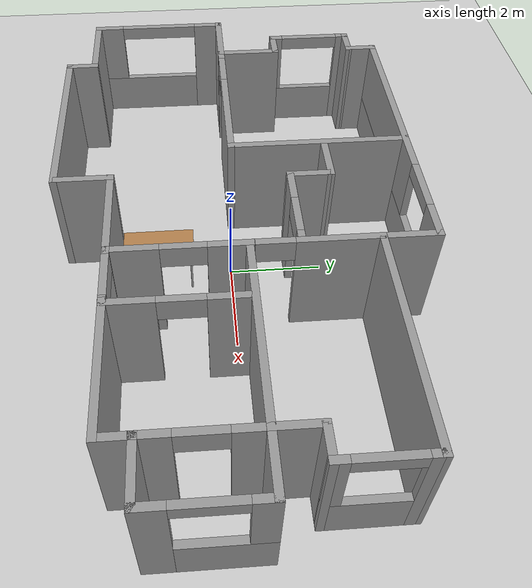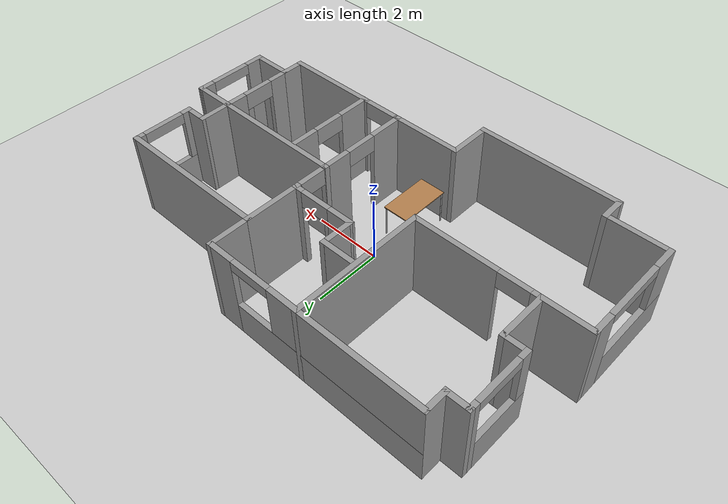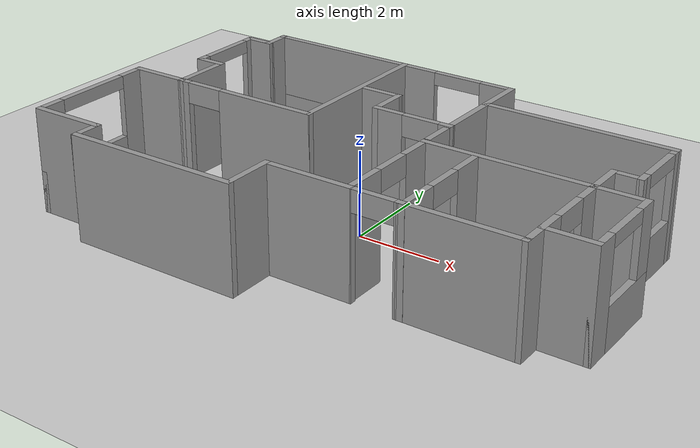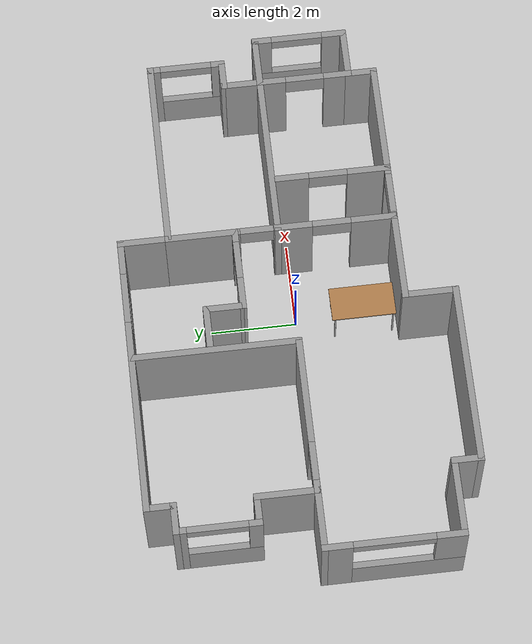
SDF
<sdf version="1.7">
 <world name="default">
  <light name="sun" type="directional">
   <pose>0 0 10 0 -0 0</pose>
   <diffuse>0.8 0.8 0.8 1</diffuse>
   <specular>0.2 0.2 0.2 1</specular>
   <attenuation>
    <range>1000</range>
    <constant>0.9</constant>
    <linear>0.01</linear>
    <quadratic>0.001</quadratic>
   </attenuation>
   <direction>-0.5 0.1 -0.9</direction>
   <spot><inner_angle>0</inner_angle><outer_angle>0</outer_angle><falloff>0</falloff></spot>
  </light>
  <model name="ground_plane">
   <static>1</static>
   <link name="link">
    <collision name="collision">
     <geometry><plane><normal>0 0 1</normal><size>100 100</size></plane></geometry>
     <surface>
      <contact><collide_bitmask>65535</collide_bitmask></contact>
      <friction><ode><mu>100</mu><mu2>50</mu2></ode></friction>
     </surface>
    </collision>
    <visual name="visual">
     <cast_shadows>0</cast_shadows>
     <geometry><plane><normal>0 0 1</normal><size>100 100</size></plane></geometry>
     <material>
      <script><uri>file://media/materials/scripts/gazebo.material</uri><name>Gazebo/Grey</name></script>
     </material>
    </visual>
   </link>
  </model>
  <gravity>0 0 -9.8</gravity>
  <magnetic_field>6e-06 2.3e-05 -4.2e-05</magnetic_field>
  <atmosphere type="adiabatic"/>
  <physics type="ode">
   <max_step_size>0.001</max_step_size>
   <real_time_factor>1</real_time_factor>
   <real_time_update_rate>1000</real_time_update_rate>
  </physics>
  <scene><ambient>0.4 0.4 0.4 1</ambient><background>0.7 0.7 0.7 1</background><shadows>1</shadows></scene>
  <spherical_coordinates>
   <surface_model>EARTH_WGS84</surface_model>
   <latitude_deg>0</latitude_deg>
   <longitude_deg>0</longitude_deg>
   <elevation>0</elevation>
   <heading_deg>0</heading_deg>
  </spherical_coordinates>
  <model name="home_yt_0817">
   <pose>-0.032308 0.150605 0 0 -0 0</pose>
   <link name="Wall_1">
    <collision name="Wall_1_Collision">
     <geometry><box><size>1.25 0.15 2.5</size></box></geometry>
     <pose>0 0 1.25 0 -0 0</pose>
    </collision>
    <visual name="Wall_1_Visual">
     <pose>0 0 1.25 0 -0 0</pose>
     <geometry><box><size>1.25 0.15 2.5</size></box></geometry>
     <material>
      <script><uri>file://media/materials/scripts/gazebo.material</uri><name>Gazebo/Grey</name></script>
      <ambient>1 1 1 1</ambient>
     </material>
     <meta><layer>0</layer></meta>
    </visual>
    <pose>-0.550075 -3.1368 0 0 -0 1.57093</pose>
   </link>
   <link name="Wall_10">
    <collision name="Wall_10_Collision">
     <geometry><box><size>0.75 0.15 2.5</size></box></geometry>
     <pose>0 0 1.25 0 -0 0</pose>
    </collision>
    <visual name="Wall_10_Visual">
     <pose>0 0 1.25 0 -0 0</pose>
     <geometry><box><size>0.75 0.15 2.5</size></box></geometry>
     <material>
      <script><uri>file://media/materials/scripts/gazebo.material</uri><name>Gazebo/Grey</name></script>
      <ambient>1 1 1 1</ambient>
     </material>
     <meta><layer>0</layer></meta>
    </visual>
    <pose>5.55 0.963311 0 0 -0 0</pose>
   </link>
   <link name="Wall_15">
    <collision name="Wall_15_Collision">
     <geometry><box><size>1.25 0.15 2.5</size></box></geometry>
     <pose>0 0 1.25 0 -0 0</pose>
    </collision>
    <visual name="Wall_15_Visual">
     <pose>0 0 1.25 0 -0 0</pose>
     <geometry><box><size>1.25 0.15 2.5</size></box></geometry>
     <material>
      <script><uri>file://media/materials/scripts/gazebo.material</uri><name>Gazebo/Grey</name></script>
      <ambient>1 1 1 1</ambient>
     </material>
     <meta><layer>0</layer></meta>
    </visual>
    <pose>1.44885 3.20009 0 0 -0 1.5708</pose>
   </link>
   <link name="Wall_16">
    <pose>-1.77565 3.75009 0 0 -0 3.14159</pose>
    <visual name="Wall_16_Visual_0">
     <pose>-2.87986 0 1.25 0 -0 0</pose>
     <geometry><box><size>0.839135 0.15 2.5</size></box></geometry>
     <material>
      <script><uri>file://media/materials/scripts/gazebo.material</uri><name>Gazebo/Grey</name></script>
      <ambient>1 1 1 1</ambient>
     </material>
     <meta><layer>0</layer></meta>
    </visual>
    <collision name="Wall_16_Collision_0">
     <geometry><box><size>0.839135 0.15 2.5</size></box></geometry>
     <pose>-2.87986 0 1.25 0 -0 0</pose>
    </collision>
    <visual name="Wall_16_Visual_1">
     <pose>0.419567 0 0.5 0 -0 0</pose>
     <geometry><box><size>5.75971 0.15 1</size></box></geometry>
     <material>
      <script><uri>file://media/materials/scripts/gazebo.material</uri><name>Gazebo/Grey</name></script>
      <ambient>1 1 1 1</ambient>
     </material>
     <meta><layer>0</layer></meta>
    </visual>
    <collision name="Wall_16_Collision_1">
     <geometry><box><size>5.75971 0.15 1</size></box></geometry>
     <pose>0.419567 0 0.5 0 -0 0</pose>
    </collision>
    <visual name="Wall_16_Visual_2">
     <pose>1.01957 0 1.75 0 -0 0</pose>
     <geometry><box><size>4.55971 0.15 1.5</size></box></geometry>
     <material>
      <script><uri>file://media/materials/scripts/gazebo.material</uri><name>Gazebo/Grey</name></script>
      <ambient>1 1 1 1</ambient>
     </material>
     <meta><layer>0</layer></meta>
    </visual>
    <collision name="Wall_16_Collision_2">
     <geometry><box><size>4.55971 0.15 1.5</size></box></geometry>
     <pose>1.01957 0 1.75 0 -0 0</pose>
    </collision>
    <visual name="Wall_16_Visual_3">
     <pose>-1.86029 0 2.35 0 -0 0</pose>
     <geometry><box><size>1.2 0.15 0.3</size></box></geometry>
     <material>
      <script><uri>file://media/materials/scripts/gazebo.material</uri><name>Gazebo/Grey</name></script>
      <ambient>1 1 1 1</ambient>
     </material>
     <meta><layer>0</layer></meta>
    </visual>
    <collision name="Wall_16_Collision_3">
     <geometry><box><size>1.2 0.15 0.3</size></box></geometry>
     <pose>-1.86029 0 2.35 0 -0 0</pose>
    </collision>
   </link>
   <link name="Wall_17">
    <collision name="Wall_17_Collision">
     <geometry><box><size>0.75 0.15 2.5</size></box></geometry>
     <pose>0 0 1.25 0 -0 0</pose>
    </collision>
    <visual name="Wall_17_Visual">
     <pose>0 0 1.25 0 -0 0</pose>
     <geometry><box><size>0.75 0.15 2.5</size></box></geometry>
     <material>
      <script><uri>file://media/materials/scripts/gazebo.material</uri><name>Gazebo/Grey</name></script>
      <ambient>1 1 1 1</ambient>
     </material>
     <meta><layer>0</layer></meta>
    </visual>
    <pose>-5.00007 3.45 0 0 -0 -1.57055</pose>
   </link>
   <link name="Wall_18">
    <collision name="Wall_18_Collision">
     <geometry><box><size>0.75 0.15 2.5</size></box></geometry>
     <pose>0 0 1.25 0 -0 0</pose>
    </collision>
    <visual name="Wall_18_Visual">
     <pose>0 0 1.25 0 -0 0</pose>
     <geometry><box><size>0.75 0.15 2.5</size></box></geometry>
     <material>
      <script><uri>file://media/materials/scripts/gazebo.material</uri><name>Gazebo/Grey</name></script>
      <ambient>1 1 1 1</ambient>
     </material>
     <meta><layer>0</layer></meta>
    </visual>
    <pose>-5.3 3.14991 0 0 -0 3.14159</pose>
   </link>
   <link name="Wall_19">
    <pose>-5.6 2.22491 0 0 -0 -1.5708</pose>
    <visual name="Wall_19_Visual_0">
     <pose>-0.848243 0 1.25 0 -0 0</pose>
     <geometry><box><size>0.303514 0.15 2.5</size></box></geometry>
     <material>
      <script><uri>file://media/materials/scripts/gazebo.material</uri><name>Gazebo/Grey</name></script>
      <ambient>1 1 1 1</ambient>
     </material>
     <meta><layer>0</layer></meta>
    </visual>
    <collision name="Wall_19_Collision_0">
     <geometry><box><size>0.303514 0.15 2.5</size></box></geometry>
     <pose>-0.848243 0 1.25 0 -0 0</pose>
    </collision>
    <visual name="Wall_19_Visual_1">
     <pose>0.151757 0 0.5 0 -0 0</pose>
     <geometry><box><size>1.69649 0.15 1</size></box></geometry>
     <material>
      <script><uri>file://media/materials/scripts/gazebo.material</uri><name>Gazebo/Grey</name></script>
      <ambient>1 1 1 1</ambient>
     </material>
     <meta><layer>0</layer></meta>
    </visual>
    <collision name="Wall_19_Collision_1">
     <geometry><box><size>1.69649 0.15 1</size></box></geometry>
     <pose>0.151757 0 0.5 0 -0 0</pose>
    </collision>
    <visual name="Wall_19_Visual_2">
     <pose>0.842836 0 1.75 0 -0 0</pose>
     <geometry><box><size>0.314328 0.15 1.5</size></box></geometry>
     <material>
      <script><uri>file://media/materials/scripts/gazebo.material</uri><name>Gazebo/Grey</name></script>
      <ambient>1 1 1 1</ambient>
     </material>
     <meta><layer>0</layer></meta>
    </visual>
    <collision name="Wall_19_Collision_2">
     <geometry><box><size>0.314328 0.15 1.5</size></box></geometry>
     <pose>0.842836 0 1.75 0 -0 0</pose>
    </collision>
    <visual name="Wall_19_Visual_3">
     <pose>-0.005407 0 2.35 0 -0 0</pose>
     <geometry><box><size>1.38216 0.15 0.3</size></box></geometry>
     <material>
      <script><uri>file://media/materials/scripts/gazebo.material</uri><name>Gazebo/Grey</name></script>
      <ambient>1 1 1 1</ambient>
     </material>
     <meta><layer>0</layer></meta>
    </visual>
    <collision name="Wall_19_Collision_3">
     <geometry><box><size>1.38216 0.15 0.3</size></box></geometry>
     <pose>-0.005407 0 2.35 0 -0 0</pose>
    </collision>
   </link>
   <link name="Wall_2">
    <collision name="Wall_2_Collision">
     <geometry><box><size>2.14885 0.15 2.5</size></box></geometry>
     <pose>0 0 1.25 0 -0 0</pose>
    </collision>
    <visual name="Wall_2_Visual">
     <pose>0 0 1.25 0 -0 0</pose>
     <geometry><box><size>2.14885 0.15 2.5</size></box></geometry>
     <material>
      <script><uri>file://media/materials/scripts/gazebo.material</uri><name>Gazebo/Grey</name></script>
      <ambient>1 1 1 1</ambient>
     </material>
     <meta><layer>0</layer></meta>
    </visual>
    <pose>0.44935 -2.58691 0 0 -0 0</pose>
   </link>
   <link name="Wall_20">
    <collision name="Wall_20_Collision">
     <geometry><box><size>0.75 0.15 2.5</size></box></geometry>
     <pose>0 0 1.25 0 -0 0</pose>
    </collision>
    <visual name="Wall_20_Visual">
     <pose>0 0 1.25 0 -0 0</pose>
     <geometry><box><size>0.75 0.15 2.5</size></box></geometry>
     <material>
      <script><uri>file://media/materials/scripts/gazebo.material</uri><name>Gazebo/Grey</name></script>
      <ambient>1 1 1 1</ambient>
     </material>
     <meta><layer>0</layer></meta>
    </visual>
    <pose>-5.3 1.29991 0 0 -0 0</pose>
   </link>
   <link name="Wall_21">
    <collision name="Wall_21_Collision">
     <geometry><box><size>1.5 0.15 2.5</size></box></geometry>
     <pose>0 0 1.25 0 -0 0</pose>
    </collision>
    <visual name="Wall_21_Visual">
     <pose>0 0 1.25 0 -0 0</pose>
     <geometry><box><size>1.5 0.15 2.5</size></box></geometry>
     <material>
      <script><uri>file://media/materials/scripts/gazebo.material</uri><name>Gazebo/Grey</name></script>
      <ambient>1 1 1 1</ambient>
     </material>
     <meta><layer>0</layer></meta>
    </visual>
    <pose>-5 0.624914 0 0 -0 -1.5708</pose>
   </link>
   <link name="Wall_22">
    <collision name="Wall_22_Collision">
     <geometry><box><size>1.5 0.15 2.5</size></box></geometry>
     <pose>0 0 1.25 0 -0 0</pose>
    </collision>
    <visual name="Wall_22_Visual">
     <pose>0 0 1.25 0 -0 0</pose>
     <geometry><box><size>1.5 0.15 2.5</size></box></geometry>
     <material>
      <script><uri>file://media/materials/scripts/gazebo.material</uri><name>Gazebo/Grey</name></script>
      <ambient>1 1 1 1</ambient>
     </material>
     <meta><layer>0</layer></meta>
    </visual>
    <pose>-5.675 -0.050086 0 0 -0 3.14159</pose>
   </link>
   <link name="Wall_23">
    <pose>-6.35 -1.60009 0 0 -0 -1.5708</pose>
    <visual name="Wall_23_Visual_0">
     <pose>-1.27339 0 1.25 0 -0 0</pose>
     <geometry><box><size>0.703229 0.15 2.5</size></box></geometry>
     <material>
      <script><uri>file://media/materials/scripts/gazebo.material</uri><name>Gazebo/Grey</name></script>
      <ambient>1 1 1 1</ambient>
     </material>
     <meta><layer>0</layer></meta>
    </visual>
    <collision name="Wall_23_Collision_0">
     <geometry><box><size>0.703229 0.15 2.5</size></box></geometry>
     <pose>-1.27339 0 1.25 0 -0 0</pose>
    </collision>
    <visual name="Wall_23_Visual_1">
     <pose>0.351614 0 0.5 0 -0 0</pose>
     <geometry><box><size>2.54677 0.15 1</size></box></geometry>
     <material>
      <script><uri>file://media/materials/scripts/gazebo.material</uri><name>Gazebo/Grey</name></script>
      <ambient>1 1 1 1</ambient>
     </material>
     <meta><layer>0</layer></meta>
    </visual>
    <collision name="Wall_23_Collision_1">
     <geometry><box><size>2.54677 0.15 1</size></box></geometry>
     <pose>0.351614 0 0.5 0 -0 0</pose>
    </collision>
    <visual name="Wall_23_Visual_2">
     <pose>1.27461 0 1.75 0 -0 0</pose>
     <geometry><box><size>0.700771 0.15 1.5</size></box></geometry>
     <material>
      <script><uri>file://media/materials/scripts/gazebo.material</uri><name>Gazebo/Grey</name></script>
      <ambient>1 1 1 1</ambient>
     </material>
     <meta><layer>0</layer></meta>
    </visual>
    <collision name="Wall_23_Collision_2">
     <geometry><box><size>0.700771 0.15 1.5</size></box></geometry>
     <pose>1.27461 0 1.75 0 -0 0</pose>
    </collision>
    <visual name="Wall_23_Visual_3">
     <pose>0.001229 0 2.35 0 -0 0</pose>
     <geometry><box><size>1.846 0.15 0.3</size></box></geometry>
     <material>
      <script><uri>file://media/materials/scripts/gazebo.material</uri><name>Gazebo/Grey</name></script>
      <ambient>1 1 1 1</ambient>
     </material>
     <meta><layer>0</layer></meta>
    </visual>
    <collision name="Wall_23_Collision_3">
     <geometry><box><size>1.846 0.15 0.3</size></box></geometry>
     <pose>0.001229 0 2.35 0 -0 0</pose>
    </collision>
   </link>
   <link name="Wall_29">
    <collision name="Wall_29_Collision">
     <geometry><box><size>0.75 0.15 2.5</size></box></geometry>
     <pose>0 0 1.25 0 -0 0</pose>
    </collision>
    <visual name="Wall_29_Visual">
     <pose>0 0 1.25 0 -0 0</pose>
     <geometry><box><size>0.75 0.15 2.5</size></box></geometry>
     <material>
      <script><uri>file://media/materials/scripts/gazebo.material</uri><name>Gazebo/Grey</name></script>
      <ambient>1 1 1 1</ambient>
     </material>
     <meta><layer>0</layer></meta>
    </visual>
    <pose>-4.65 -3.45009 0 0 -0 -1.5708</pose>
   </link>
   <link name="Wall_3">
    <pose>2.04935 -2.58691 0 0 -0 0</pose>
    <visual name="Wall_3_Visual_0">
     <pose>-0.586161 0 1.25 0 -0 0</pose>
     <geometry><box><size>0.178829 0.15 2.5</size></box></geometry>
     <material>
      <script><uri>file://media/materials/scripts/gazebo.material</uri><name>Gazebo/Grey</name></script>
      <ambient>1 1 1 1</ambient>
     </material>
     <meta><layer>0</layer></meta>
    </visual>
    <collision name="Wall_3_Collision_0">
     <geometry><box><size>0.178829 0.15 2.5</size></box></geometry>
     <pose>-0.586161 0 1.25 0 -0 0</pose>
    </collision>
    <visual name="Wall_3_Visual_1">
     <pose>0.576703 0 1.25 0 -0 0</pose>
     <geometry><box><size>0.197745 0.15 2.5</size></box></geometry>
     <material>
      <script><uri>file://media/materials/scripts/gazebo.material</uri><name>Gazebo/Grey</name></script>
      <ambient>1 1 1 1</ambient>
     </material>
     <meta><layer>0</layer></meta>
    </visual>
    <collision name="Wall_3_Collision_1">
     <geometry><box><size>0.197745 0.15 2.5</size></box></geometry>
     <pose>0.576703 0 1.25 0 -0 0</pose>
    </collision>
    <visual name="Wall_3_Visual_2">
     <pose>-0.009458 0 2.25 0 -0 0</pose>
     <geometry><box><size>0.974577 0.15 0.5</size></box></geometry>
     <material>
      <script><uri>file://media/materials/scripts/gazebo.material</uri><name>Gazebo/Grey</name></script>
      <ambient>1 1 1 1</ambient>
     </material>
     <meta><layer>0</layer></meta>
    </visual>
    <collision name="Wall_3_Collision_2">
     <geometry><box><size>0.974577 0.15 0.5</size></box></geometry>
     <pose>-0.009458 0 2.25 0 -0 0</pose>
    </collision>
   </link>
   <link name="Wall_30">
    <collision name="Wall_30_Collision">
     <geometry><box><size>4.25049 0.15 2.5</size></box></geometry>
     <pose>0 0 1.25 0 -0 0</pose>
    </collision>
    <visual name="Wall_30_Visual">
     <pose>0 0 1.25 0 -0 0</pose>
     <geometry><box><size>4.25049 0.15 2.5</size></box></geometry>
     <material>
      <script><uri>file://media/materials/scripts/gazebo.material</uri><name>Gazebo/Grey</name></script>
      <ambient>1 1 1 1</ambient>
     </material>
     <meta><layer>0</layer></meta>
    </visual>
    <pose>-2.6 -3.75009 0 0 -0 0</pose>
   </link>
   <link name="Wall_32">
    <pose>-3.20008 -0.05 0 0 -0 4.8e-05</pose>
    <visual name="Wall_32_Visual_0">
     <pose>-1.71618 0 1.25 0 -0 0</pose>
     <geometry><box><size>0.317631 0.15 2.5</size></box></geometry>
     <material>
      <script><uri>file://media/materials/scripts/gazebo.material</uri><name>Gazebo/Grey</name></script>
      <ambient>1 1 1 1</ambient>
     </material>
     <meta><layer>0</layer></meta>
    </visual>
    <collision name="Wall_32_Collision_0">
     <geometry><box><size>0.317631 0.15 2.5</size></box></geometry>
     <pose>-1.71618 0 1.25 0 -0 0</pose>
    </collision>
    <visual name="Wall_32_Visual_1">
     <pose>0.608816 0 1.25 0 -0 0</pose>
     <geometry><box><size>2.53237 0.15 2.5</size></box></geometry>
     <material>
      <script><uri>file://media/materials/scripts/gazebo.material</uri><name>Gazebo/Grey</name></script>
      <ambient>1 1 1 1</ambient>
     </material>
     <meta><layer>0</layer></meta>
    </visual>
    <collision name="Wall_32_Collision_1">
     <geometry><box><size>2.53237 0.15 2.5</size></box></geometry>
     <pose>0.608816 0 1.25 0 -0 0</pose>
    </collision>
    <visual name="Wall_32_Visual_2">
     <pose>-1.10737 0 2.25 0 -0 0</pose>
     <geometry><box><size>0.9 0.15 0.5</size></box></geometry>
     <material>
      <script><uri>file://media/materials/scripts/gazebo.material</uri><name>Gazebo/Grey</name></script>
      <ambient>1 1 1 1</ambient>
     </material>
     <meta><layer>0</layer></meta>
    </visual>
    <collision name="Wall_32_Collision_2">
     <geometry><box><size>0.9 0.15 0.5</size></box></geometry>
     <pose>-1.10737 0 2.25 0 -0 0</pose>
    </collision>
   </link>
   <link name="Wall_38">
    <collision name="Wall_38_Collision">
     <geometry><box><size>3.95 0.15 2.5</size></box></geometry>
     <pose>0 0 1.25 0 -0 0</pose>
    </collision>
    <visual name="Wall_38_Visual">
     <pose>0 0 1.25 0 -0 0</pose>
     <geometry><box><size>3.95 0.15 2.5</size></box></geometry>
     <material>
      <script><uri>file://media/materials/scripts/gazebo.material</uri><name>Gazebo/Grey</name></script>
      <ambient>1 1 1 1</ambient>
     </material>
     <meta><layer>0</layer></meta>
    </visual>
    <pose>-1.40015 1.85009 0 0 -0 1.5708</pose>
   </link>
   <link name="Wall_4">
    <collision name="Wall_4_Collision">
     <geometry><box><size>2.75 0.15 2.5</size></box></geometry>
     <pose>0 0 1.25 0 -0 0</pose>
    </collision>
    <visual name="Wall_4_Visual">
     <pose>0 0 1.25 0 -0 0</pose>
     <geometry><box><size>2.75 0.15 2.5</size></box></geometry>
     <material>
      <script><uri>file://media/materials/scripts/gazebo.material</uri><name>Gazebo/Grey</name></script>
      <ambient>1 1 1 1</ambient>
     </material>
     <meta><layer>0</layer></meta>
    </visual>
    <pose>3.94992 -2.5868 0 0 -0 8.7e-05</pose>
   </link>
   <link name="Wall_40">
    <collision name="Wall_40_Collision">
     <geometry><box><size>1 0.15 2.5</size></box></geometry>
     <pose>0 0 1.25 0 -0 0</pose>
    </collision>
    <visual name="Wall_40_Visual">
     <pose>0 0 1.25 0 -0 0</pose>
     <geometry><box><size>1 0.15 2.5</size></box></geometry>
     <material>
      <script><uri>file://media/materials/scripts/gazebo.material</uri><name>Gazebo/Grey</name></script>
      <ambient>1 1 1 1</ambient>
     </material>
     <meta><layer>0</layer></meta>
    </visual>
    <pose>-0.825948 1.95762 0 0 -0 0</pose>
   </link>
   <link name="Wall_41">
    <collision name="Wall_41_Collision">
     <geometry><box><size>1 0.15 2.5</size></box></geometry>
     <pose>0 0 1.25 0 -0 0</pose>
    </collision>
    <visual name="Wall_41_Visual">
     <pose>0 0 1.25 0 -0 0</pose>
     <geometry><box><size>1 0.15 2.5</size></box></geometry>
     <material>
      <script><uri>file://media/materials/scripts/gazebo.material</uri><name>Gazebo/Grey</name></script>
      <ambient>1 1 1 1</ambient>
     </material>
     <meta><layer>0</layer></meta>
    </visual>
    <pose>-0.401049 1.53285 0 0 -0 -1.57103</pose>
   </link>
   <link name="Wall_49">
    <pose>0.52385 1.10809 0 0 -0 0</pose>
    <visual name="Wall_49_Visual_0">
     <pose>-0.613419 0 1.25 0 -0 0</pose>
     <geometry><box><size>0.773161 0.15 2.5</size></box></geometry>
     <material>
      <script><uri>file://media/materials/scripts/gazebo.material</uri><name>Gazebo/Grey</name></script>
      <ambient>1 1 1 1</ambient>
     </material>
     <meta><layer>0</layer></meta>
    </visual>
    <collision name="Wall_49_Collision_0">
     <geometry><box><size>0.773161 0.15 2.5</size></box></geometry>
     <pose>-0.613419 0 1.25 0 -0 0</pose>
    </collision>
    <visual name="Wall_49_Visual_1">
     <pose>0.836581 0 1.25 0 -0 0</pose>
     <geometry><box><size>0.326839 0.15 2.5</size></box></geometry>
     <material>
      <script><uri>file://media/materials/scripts/gazebo.material</uri><name>Gazebo/Grey</name></script>
      <ambient>1 1 1 1</ambient>
     </material>
     <meta><layer>0</layer></meta>
    </visual>
    <collision name="Wall_49_Collision_1">
     <geometry><box><size>0.326839 0.15 2.5</size></box></geometry>
     <pose>0.836581 0 1.25 0 -0 0</pose>
    </collision>
    <visual name="Wall_49_Visual_2">
     <pose>0.223161 0 2.25 0 -0 0</pose>
     <geometry><box><size>0.9 0.15 0.5</size></box></geometry>
     <material>
      <script><uri>file://media/materials/scripts/gazebo.material</uri><name>Gazebo/Grey</name></script>
      <ambient>1 1 1 1</ambient>
     </material>
     <meta><layer>0</layer></meta>
    </visual>
    <collision name="Wall_49_Collision_2">
     <geometry><box><size>0.9 0.15 0.5</size></box></geometry>
     <pose>0.223161 0 2.25 0 -0 0</pose>
    </collision>
   </link>
   <link name="Wall_5">
    <collision name="Wall_5_Collision">
     <geometry><box><size>0.75 0.15 2.5</size></box></geometry>
     <pose>0 0 1.25 0 -0 0</pose>
    </collision>
    <visual name="Wall_5_Visual">
     <pose>0 0 1.25 0 -0 0</pose>
     <geometry><box><size>0.75 0.15 2.5</size></box></geometry>
     <material>
      <script><uri>file://media/materials/scripts/gazebo.material</uri><name>Gazebo/Grey</name></script>
      <ambient>1 1 1 1</ambient>
     </material>
     <meta><layer>0</layer></meta>
    </visual>
    <pose>5.25 -2.28669 0 0 -0 1.5708</pose>
   </link>
   <link name="Wall_6">
    <collision name="Wall_6_Collision">
     <geometry><box><size>1.25 0.15 2.5</size></box></geometry>
     <pose>0 0 1.25 0 -0 0</pose>
    </collision>
    <visual name="Wall_6_Visual">
     <pose>0 0 1.25 0 -0 0</pose>
     <geometry><box><size>1.25 0.15 2.5</size></box></geometry>
     <material>
      <script><uri>file://media/materials/scripts/gazebo.material</uri><name>Gazebo/Grey</name></script>
      <ambient>1 1 1 1</ambient>
     </material>
     <meta><layer>0</layer></meta>
    </visual>
    <pose>5.8 -1.98669 0 0 -0 0</pose>
   </link>
   <link name="Wall_62">
    <pose>1.44885 -1.22042 0 0 -0 -1.5708</pose>
    <visual name="Wall_62_Visual_0">
     <pose>-0.979583 0 1.25 0 -0 0</pose>
     <geometry><box><size>0.892833 0.15 2.5</size></box></geometry>
     <material>
      <script><uri>file://media/materials/scripts/gazebo.material</uri><name>Gazebo/Grey</name></script>
      <ambient>1 1 1 1</ambient>
     </material>
     <meta><layer>0</layer></meta>
    </visual>
    <collision name="Wall_62_Collision_0">
     <geometry><box><size>0.892833 0.15 2.5</size></box></geometry>
     <pose>-0.979583 0 1.25 0 -0 0</pose>
    </collision>
    <visual name="Wall_62_Visual_1">
     <pose>0.896417 0 1.25 0 -0 0</pose>
     <geometry><box><size>1.05917 0.15 2.5</size></box></geometry>
     <material>
      <script><uri>file://media/materials/scripts/gazebo.material</uri><name>Gazebo/Grey</name></script>
      <ambient>1 1 1 1</ambient>
     </material>
     <meta><layer>0</layer></meta>
    </visual>
    <collision name="Wall_62_Collision_1">
     <geometry><box><size>1.05917 0.15 2.5</size></box></geometry>
     <pose>0.896417 0 1.25 0 -0 0</pose>
    </collision>
    <visual name="Wall_62_Visual_2">
     <pose>-0.083167 0 2.25 0 -0 0</pose>
     <geometry><box><size>0.9 0.15 0.5</size></box></geometry>
     <material>
      <script><uri>file://media/materials/scripts/gazebo.material</uri><name>Gazebo/Grey</name></script>
      <ambient>1 1 1 1</ambient>
     </material>
     <meta><layer>0</layer></meta>
    </visual>
    <collision name="Wall_62_Collision_2">
     <geometry><box><size>0.9 0.15 0.5</size></box></geometry>
     <pose>-0.083167 0 2.25 0 -0 0</pose>
    </collision>
   </link>
   <link name="Wall_65">
    <collision name="Wall_65_Collision">
     <geometry><box><size>3.951 0.15 2.5</size></box></geometry>
     <pose>0 0 1.25 0 -0 0</pose>
    </collision>
    <visual name="Wall_65_Visual">
     <pose>0 0 1.25 0 -0 0</pose>
     <geometry><box><size>3.951 0.15 2.5</size></box></geometry>
     <material>
      <script><uri>file://media/materials/scripts/gazebo.material</uri><name>Gazebo/Grey</name></script>
      <ambient>1 1 1 1</ambient>
     </material>
     <meta><layer>0</layer></meta>
    </visual>
    <pose>3.34935 0.113086 0 0 -0 3.14159</pose>
   </link>
   <link name="Wall_67">
    <pose>2.68985 -1.30741 0 0 -0 -1.5708</pose>
    <visual name="Wall_67_Visual_0">
     <pose>-0.958274 0 1.25 0 -0 0</pose>
     <geometry><box><size>0.796452 0.15 2.5</size></box></geometry>
     <material>
      <script><uri>file://media/materials/scripts/gazebo.material</uri><name>Gazebo/Grey</name></script>
      <ambient>1 1 1 1</ambient>
     </material>
     <meta><layer>0</layer></meta>
    </visual>
    <collision name="Wall_67_Collision_0">
     <geometry><box><size>0.796452 0.15 2.5</size></box></geometry>
     <pose>-0.958274 0 1.25 0 -0 0</pose>
    </collision>
    <visual name="Wall_67_Visual_1">
     <pose>0.848226 0 1.25 0 -0 0</pose>
     <geometry><box><size>1.01655 0.15 2.5</size></box></geometry>
     <material>
      <script><uri>file://media/materials/scripts/gazebo.material</uri><name>Gazebo/Grey</name></script>
      <ambient>1 1 1 1</ambient>
     </material>
     <meta><layer>0</layer></meta>
    </visual>
    <collision name="Wall_67_Collision_1">
     <geometry><box><size>1.01655 0.15 2.5</size></box></geometry>
     <pose>0.848226 0 1.25 0 -0 0</pose>
    </collision>
    <visual name="Wall_67_Visual_2">
     <pose>-0.110048 0 2.25 0 -0 0</pose>
     <geometry><box><size>0.9 0.15 0.5</size></box></geometry>
     <material>
      <script><uri>file://media/materials/scripts/gazebo.material</uri><name>Gazebo/Grey</name></script>
      <ambient>1 1 1 1</ambient>
     </material>
     <meta><layer>0</layer></meta>
    </visual>
    <collision name="Wall_67_Collision_2">
     <geometry><box><size>0.9 0.15 0.5</size></box></geometry>
     <pose>-0.110048 0 2.25 0 -0 0</pose>
    </collision>
   </link>
   <link name="Wall_7">
    <pose>6.35 -0.936689 0 0 -0 1.5708</pose>
    <visual name="Wall_7_Visual_0">
     <pose>-0.832769 0 1.25 0 -0 0</pose>
     <geometry><box><size>0.584462 0.15 2.5</size></box></geometry>
     <material>
      <script><uri>file://media/materials/scripts/gazebo.material</uri><name>Gazebo/Grey</name></script>
      <ambient>1 1 1 1</ambient>
     </material>
     <meta><layer>0</layer></meta>
    </visual>
    <collision name="Wall_7_Collision_0">
     <geometry><box><size>0.584462 0.15 2.5</size></box></geometry>
     <pose>-0.832769 0 1.25 0 -0 0</pose>
    </collision>
    <visual name="Wall_7_Visual_1">
     <pose>0.292231 0 0.5 0 -0 0</pose>
     <geometry><box><size>1.66554 0.15 1</size></box></geometry>
     <material>
      <script><uri>file://media/materials/scripts/gazebo.material</uri><name>Gazebo/Grey</name></script>
      <ambient>1 1 1 1</ambient>
     </material>
     <meta><layer>0</layer></meta>
    </visual>
    <collision name="Wall_7_Collision_1">
     <geometry><box><size>1.66554 0.15 1</size></box></geometry>
     <pose>0.292231 0 0.5 0 -0 0</pose>
    </collision>
    <visual name="Wall_7_Visual_2">
     <pose>0.892231 0 1.75 0 -0 0</pose>
     <geometry><box><size>0.465538 0.15 1.5</size></box></geometry>
     <material>
      <script><uri>file://media/materials/scripts/gazebo.material</uri><name>Gazebo/Grey</name></script>
      <ambient>1 1 1 1</ambient>
     </material>
     <meta><layer>0</layer></meta>
    </visual>
    <collision name="Wall_7_Collision_2">
     <geometry><box><size>0.465538 0.15 1.5</size></box></geometry>
     <pose>0.892231 0 1.75 0 -0 0</pose>
    </collision>
    <visual name="Wall_7_Visual_3">
     <pose>0.059462 0 2.35 0 -0 0</pose>
     <geometry><box><size>1.2 0.15 0.3</size></box></geometry>
     <material>
      <script><uri>file://media/materials/scripts/gazebo.material</uri><name>Gazebo/Grey</name></script>
      <ambient>1 1 1 1</ambient>
     </material>
     <meta><layer>0</layer></meta>
    </visual>
    <collision name="Wall_7_Collision_3">
     <geometry><box><size>1.2 0.15 0.3</size></box></geometry>
     <pose>0.059462 0 2.35 0 -0 0</pose>
    </collision>
   </link>
   <link name="Wall_76">
    <pose>5.84992 1.8067 0 0 -0 -1.57071</pose>
    <visual name="Wall_76_Visual_0">
     <pose>-0.764842 0 1.25 0 -0 0</pose>
     <geometry><box><size>0.307091 0.15 2.5</size></box></geometry>
     <material>
      <script><uri>file://media/materials/scripts/gazebo.material</uri><name>Gazebo/Grey</name></script>
      <ambient>1 1 1 1</ambient>
     </material>
     <meta><layer>0</layer></meta>
    </visual>
    <collision name="Wall_76_Collision_0">
     <geometry><box><size>0.307091 0.15 2.5</size></box></geometry>
     <pose>-0.764842 0 1.25 0 -0 0</pose>
    </collision>
    <visual name="Wall_76_Visual_1">
     <pose>0.153545 0 0.5 0 -0 0</pose>
     <geometry><box><size>1.52968 0.15 1</size></box></geometry>
     <material>
      <script><uri>file://media/materials/scripts/gazebo.material</uri><name>Gazebo/Grey</name></script>
      <ambient>1 1 1 1</ambient>
     </material>
     <meta><layer>0</layer></meta>
    </visual>
    <collision name="Wall_76_Collision_1">
     <geometry><box><size>1.52968 0.15 1</size></box></geometry>
     <pose>0.153545 0 0.5 0 -0 0</pose>
    </collision>
    <visual name="Wall_76_Visual_2">
     <pose>0.753545 0 1.75 0 -0 0</pose>
     <geometry><box><size>0.329684 0.15 1.5</size></box></geometry>
     <material>
      <script><uri>file://media/materials/scripts/gazebo.material</uri><name>Gazebo/Grey</name></script>
      <ambient>1 1 1 1</ambient>
     </material>
     <meta><layer>0</layer></meta>
    </visual>
    <collision name="Wall_76_Collision_2">
     <geometry><box><size>0.329684 0.15 1.5</size></box></geometry>
     <pose>0.753545 0 1.75 0 -0 0</pose>
    </collision>
    <visual name="Wall_76_Visual_3">
     <pose>-0.011297 0 2.35 0 -0 0</pose>
     <geometry><box><size>1.2 0.15 0.3</size></box></geometry>
     <material>
      <script><uri>file://media/materials/scripts/gazebo.material</uri><name>Gazebo/Grey</name></script>
      <ambient>1 1 1 1</ambient>
     </material>
     <meta><layer>0</layer></meta>
    </visual>
    <collision name="Wall_76_Collision_3">
     <geometry><box><size>1.2 0.15 0.3</size></box></geometry>
     <pose>-0.011297 0 2.35 0 -0 0</pose>
    </collision>
   </link>
   <link name="Wall_78">
    <pose>1.44885 1.38159 0 0 -0 1.5708</pose>
    <visual name="Wall_78_Visual_0">
     <pose>-1.25616 0 1.25 0 -0 0</pose>
     <geometry><box><size>0.174688 0.15 2.5</size></box></geometry>
     <material>
      <script><uri>file://media/materials/scripts/gazebo.material</uri><name>Gazebo/Grey</name></script>
      <ambient>1 1 1 1</ambient>
     </material>
     <meta><layer>0</layer></meta>
    </visual>
    <collision name="Wall_78_Collision_0">
     <geometry><box><size>0.174688 0.15 2.5</size></box></geometry>
     <pose>-1.25616 0 1.25 0 -0 0</pose>
    </collision>
    <visual name="Wall_78_Visual_1">
     <pose>0.474983 0 1.25 0 -0 0</pose>
     <geometry><box><size>1.73703 0.15 2.5</size></box></geometry>
     <material>
      <script><uri>file://media/materials/scripts/gazebo.material</uri><name>Gazebo/Grey</name></script>
      <ambient>1 1 1 1</ambient>
     </material>
     <meta><layer>0</layer></meta>
    </visual>
    <collision name="Wall_78_Collision_1">
     <geometry><box><size>1.73703 0.15 2.5</size></box></geometry>
     <pose>0.474983 0 1.25 0 -0 0</pose>
    </collision>
    <visual name="Wall_78_Visual_2">
     <pose>-0.781173 0 2.25 0 -0 0</pose>
     <geometry><box><size>0.775278 0.15 0.5</size></box></geometry>
     <material>
      <script><uri>file://media/materials/scripts/gazebo.material</uri><name>Gazebo/Grey</name></script>
      <ambient>1 1 1 1</ambient>
     </material>
     <meta><layer>0</layer></meta>
    </visual>
    <collision name="Wall_78_Collision_2">
     <geometry><box><size>0.775278 0.15 0.5</size></box></geometry>
     <pose>-0.781173 0 2.25 0 -0 0</pose>
    </collision>
   </link>
   <link name="Wall_8">
    <collision name="Wall_8_Collision">
     <geometry><box><size>1.25 0.15 2.5</size></box></geometry>
     <pose>0 0 1.25 0 -0 0</pose>
    </collision>
    <visual name="Wall_8_Visual">
     <pose>0 0 1.25 0 -0 0</pose>
     <geometry><box><size>1.25 0.15 2.5</size></box></geometry>
     <material>
      <script><uri>file://media/materials/scripts/gazebo.material</uri><name>Gazebo/Grey</name></script>
      <ambient>1 1 1 1</ambient>
     </material>
     <meta><layer>0</layer></meta>
    </visual>
    <pose>5.79992 0.113199 0 0 -0 -3.14139</pose>
   </link>
   <link name="Wall_80">
    <pose>5.24993 -0.936801 0 0 -0 1.57087</pose>
    <visual name="Wall_80_Visual_0">
     <pose>-0.792093 0 1.25 0 -0 0</pose>
     <geometry><box><size>0.665589 0.15 2.5</size></box></geometry>
     <material>
      <script><uri>file://media/materials/scripts/gazebo.material</uri><name>Gazebo/Grey</name></script>
      <ambient>1 1 1 1</ambient>
     </material>
     <meta><layer>0</layer></meta>
    </visual>
    <collision name="Wall_80_Collision_0">
     <geometry><box><size>0.665589 0.15 2.5</size></box></geometry>
     <pose>-0.792093 0 1.25 0 -0 0</pose>
    </collision>
    <visual name="Wall_80_Visual_1">
     <pose>0.782795 0 1.25 0 -0 0</pose>
     <geometry><box><size>0.684186 0.15 2.5</size></box></geometry>
     <material>
      <script><uri>file://media/materials/scripts/gazebo.material</uri><name>Gazebo/Grey</name></script>
      <ambient>1 1 1 1</ambient>
     </material>
     <meta><layer>0</layer></meta>
    </visual>
    <collision name="Wall_80_Collision_1">
     <geometry><box><size>0.684186 0.15 2.5</size></box></geometry>
     <pose>0.782795 0 1.25 0 -0 0</pose>
    </collision>
    <visual name="Wall_80_Visual_2">
     <pose>-0.009298 0 2.25 0 -0 0</pose>
     <geometry><box><size>0.9 0.15 0.5</size></box></geometry>
     <material>
      <script><uri>file://media/materials/scripts/gazebo.material</uri><name>Gazebo/Grey</name></script>
      <ambient>1 1 1 1</ambient>
     </material>
     <meta><layer>0</layer></meta>
    </visual>
    <collision name="Wall_80_Collision_2">
     <geometry><box><size>0.9 0.15 0.5</size></box></geometry>
     <pose>-0.009298 0 2.25 0 -0 0</pose>
    </collision>
   </link>
   <link name="Wall_82">
    <collision name="Wall_82_Collision">
     <geometry><box><size>4.5 0.15 2.5</size></box></geometry>
     <pose>0 0 1.25 0 -0 0</pose>
    </collision>
    <visual name="Wall_82_Visual">
     <pose>0 0 1.25 0 -0 0</pose>
     <geometry><box><size>4.5 0.15 2.5</size></box></geometry>
     <material>
      <script><uri>file://media/materials/scripts/gazebo.material</uri><name>Gazebo/Grey</name></script>
      <ambient>1 1 1 1</ambient>
     </material>
     <meta><layer>0</layer></meta>
    </visual>
    <pose>3.67485 2.65009 0 0 -0 3.14159</pose>
   </link>
   <link name="Wall_84">
    <collision name="Wall_84_Collision">
     <geometry><box><size>1.85 0.15 2.5</size></box></geometry>
     <pose>0 0 1.25 0 -0 0</pose>
    </collision>
    <visual name="Wall_84_Visual">
     <pose>0 0 1.25 0 -0 0</pose>
     <geometry><box><size>1.85 0.15 2.5</size></box></geometry>
     <material>
      <script><uri>file://media/materials/scripts/gazebo.material</uri><name>Gazebo/Grey</name></script>
      <ambient>1 1 1 1</ambient>
     </material>
     <meta><layer>0</layer></meta>
    </visual>
    <pose>-5.5 -3.15009 0 0 -0 3.14159</pose>
   </link>
   <link name="Wall_9">
    <collision name="Wall_9_Collision">
     <geometry><box><size>1 0.15 2.5</size></box></geometry>
     <pose>0 0 1.25 0 -0 0</pose>
    </collision>
    <visual name="Wall_9_Visual">
     <pose>0 0 1.25 0 -0 0</pose>
     <geometry><box><size>1 0.15 2.5</size></box></geometry>
     <material>
      <script><uri>file://media/materials/scripts/gazebo.material</uri><name>Gazebo/Grey</name></script>
      <ambient>1 1 1 1</ambient>
     </material>
     <meta><layer>0</layer></meta>
    </visual>
    <pose>5.24993 0.538199 0 0 -0 1.57062</pose>
   </link>
   <static>1</static>
  </model>
  <model name="Table_clone">
   <static>1</static>
   <link name="link">
    <collision name="surface">
     <pose>0 0 1 0 -0 0</pose>
     <geometry><box><size>1.5 0.8 0.03</size></box></geometry>
     <surface><friction><ode><mu>0.6</mu><mu2>0.6</mu2></ode></friction></surface>
    </collision>
    <visual name="visual1">
     <pose>0 0 1 0 -0 0</pose>
     <geometry><box><size>1.5 0.8 0.03</size></box></geometry>
     <material>
      <diffuse>1 1 1 1</diffuse>
      <script><uri>file://media/materials/scripts/gazebo.material</uri><name>Gazebo/Wood</name></script>
      <pbr>
       <metal>
        <albedo_map>https://fuel.ignitionrobotics.org/1.0/openrobotics/models/table/3/files/Table_Diffuse.jpg</albedo_map>
       </metal>
      </pbr>
     </material>
    </visual>
    <collision name="front_left_leg">
     <pose>0.68 0.38 0.5 0 -0 0</pose>
     <geometry><cylinder><radius>0.02</radius><length>1</length></cylinder></geometry>
    </collision>
    <visual name="front_left_leg">
     <pose>0.68 0.38 0.5 0 -0 0</pose>
     <geometry><cylinder><radius>0.02</radius><length>1</length></cylinder></geometry>
     <material>
      <diffuse>0.5 0.5 0.5 1</diffuse>
      <script><uri>file://media/materials/scripts/gazebo.material</uri><name>Gazebo/Grey</name></script>
     </material>
    </visual>
    <collision name="front_right_leg">
     <pose>0.68 -0.38 0.5 0 -0 0</pose>
     <geometry><cylinder><radius>0.02</radius><length>1</length></cylinder></geometry>
    </collision>
    <visual name="front_right_leg">
     <pose>0.68 -0.38 0.5 0 -0 0</pose>
     <geometry><cylinder><radius>0.02</radius><length>1</length></cylinder></geometry>
     <material>
      <diffuse>0.5 0.5 0.5 1</diffuse>
      <script><uri>file://media/materials/scripts/gazebo.material</uri><name>Gazebo/Grey</name></script>
     </material>
    </visual>
    <collision name="back_right_leg">
     <pose>-0.68 -0.38 0.5 0 -0 0</pose>
     <geometry><cylinder><radius>0.02</radius><length>1</length></cylinder></geometry>
    </collision>
    <visual name="back_right_leg">
     <pose>-0.68 -0.38 0.5 0 -0 0</pose>
     <geometry><cylinder><radius>0.02</radius><length>1</length></cylinder></geometry>
     <material>
      <diffuse>0.5 0.5 0.5 1</diffuse>
      <script><uri>file://media/materials/scripts/gazebo.material</uri><name>Gazebo/Grey</name></script>
     </material>
    </visual>
    <collision name="back_left_leg">
     <pose>-0.68 0.38 0.5 0 -0 0</pose>
     <geometry><cylinder><radius>0.02</radius><length>1</length></cylinder></geometry>
    </collision>
    <visual name="back_left_leg">
     <pose>-0.68 0.38 0.5 0 -0 0</pose>
     <geometry><cylinder><radius>0.02</radius><length>1</length></cylinder></geometry>
     <material>
      <diffuse>0.5 0.5 0.5 1</diffuse>
      <script><uri>file://media/materials/scripts/gazebo.material</uri><name>Gazebo/Grey</name></script>
     </material>
    </visual>
   </link>
   <pose>-0.006698 -1.55402 0 0 -0 1.57417</pose>
  </model>
 </world>
</sdf>
